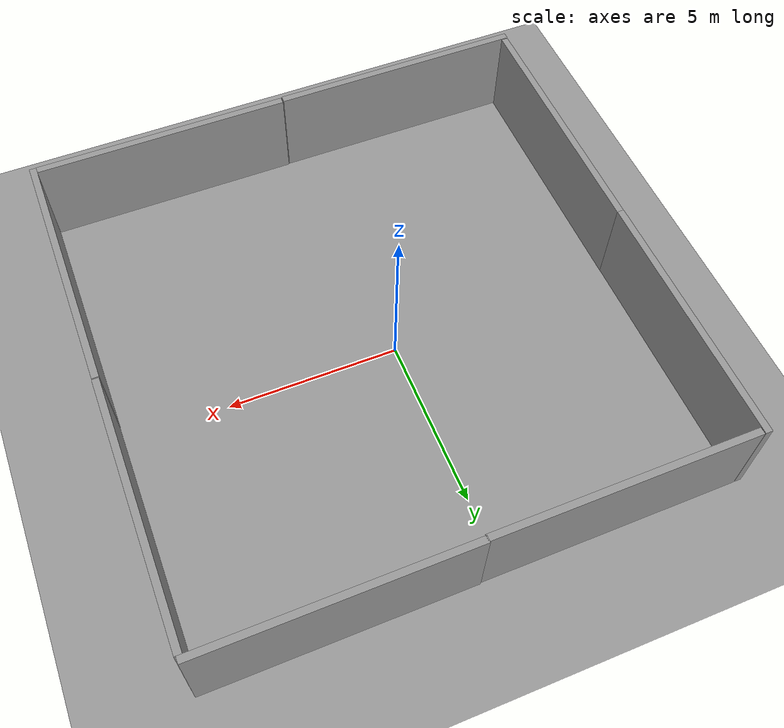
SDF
<sdf version="1.6">
 <world name="default">
  <light name="sun" type="directional">
   <pose>0 0 10 0 -0 0</pose>
   <diffuse>0.8 0.8 0.8 1</diffuse>
   <specular>0.1 0.1 0.1 1</specular>
   <attenuation>
    <range>1000</range>
    <constant>0.9</constant>
    <linear>0.01</linear>
    <quadratic>0.001</quadratic>
   </attenuation>
   <direction>-0.5 0.5 -1</direction>
  </light>
  <gravity>0 0 -9.8</gravity>
  <magnetic_field>6e-06 2.3e-05 -4.2e-05</magnetic_field>
  <atmosphere type="adiabatic"/>
  <physics name="default_physics" default="0" type="ode">
   <max_step_size>0.001</max_step_size>
   <real_time_factor>1</real_time_factor>
   <real_time_update_rate>1000</real_time_update_rate>
  </physics>
  <scene><ambient>0.4 0.4 0.4 1</ambient><background>0.7 0.7 0.7 1</background><shadows>1</shadows></scene>
  <spherical_coordinates>
   <surface_model>EARTH_WGS84</surface_model>
   <latitude_deg>0</latitude_deg>
   <longitude_deg>0</longitude_deg>
   <elevation>0</elevation>
   <heading_deg>0</heading_deg>
  </spherical_coordinates>
  <model name="grey_wall">
   <static>1</static>
   <link name="link">
    <pose>0 0 1.4 0 -0 0</pose>
    <collision name="collision"><geometry><box><size>7.5 0.2 2.8</size></box></geometry></collision>
    <visual name="visual">
     <cast_shadows>0</cast_shadows>
     <geometry><box><size>7.5 0.2 2.8</size></box></geometry>
     <material>
      <script>
       <uri>model://grey_wall/materials/scripts</uri>
       <uri>model://grey_wall/materials/textures</uri>
       <name>vrc/grey_wall</name>
      </script>
     </material>
    </visual>
   </link>
   <pose>4.40592 7.09968 0 0 -0 0</pose>
  </model>
  <model name="grey_wall_0">
   <static>1</static>
   <link name="link">
    <pose>0 0 1.4 0 -0 0</pose>
    <collision name="collision"><geometry><box><size>7.5 0.2 2.8</size></box></geometry></collision>
    <visual name="visual">
     <cast_shadows>0</cast_shadows>
     <geometry><box><size>7.5 0.2 2.8</size></box></geometry>
     <material>
      <script>
       <uri>model://grey_wall/materials/scripts</uri>
       <uri>model://grey_wall/materials/textures</uri>
       <name>vrc/grey_wall</name>
      </script>
     </material>
    </visual>
   </link>
   <pose>-3.06042 7.07139 0 0 -0 0</pose>
  </model>
  <model name="grey_wall_0_clone">
   <static>1</static>
   <link name="link">
    <pose>0 0 1.4 0 -0 0</pose>
    <collision name="collision"><geometry><box><size>7.5 0.2 2.8</size></box></geometry></collision>
    <visual name="visual">
     <cast_shadows>0</cast_shadows>
     <geometry><box><size>7.5 0.2 2.8</size></box></geometry>
     <material>
      <script>
       <uri>model://grey_wall/materials/scripts</uri>
       <uri>model://grey_wall/materials/textures</uri>
       <name>vrc/grey_wall</name>
      </script>
     </material>
    </visual>
   </link>
   <pose>-6.93663 3.41956 0 0 -0 1.57</pose>
  </model>
  <model name="grey_wall_0_clone_clone">
   <static>1</static>
   <link name="link">
    <pose>0 0 1.4 0 -0 0</pose>
    <collision name="collision"><geometry><box><size>7.5 0.2 2.8</size></box></geometry></collision>
    <visual name="visual">
     <cast_shadows>0</cast_shadows>
     <geometry><box><size>7.5 0.2 2.8</size></box></geometry>
     <material>
      <script>
       <uri>model://grey_wall/materials/scripts</uri>
       <uri>model://grey_wall/materials/textures</uri>
       <name>vrc/grey_wall</name>
      </script>
     </material>
    </visual>
   </link>
   <pose>-6.93799 -4.07799 0 0 -0 1.57</pose>
  </model>
  <model name="grey_wall_clone">
   <static>1</static>
   <link name="link">
    <pose>0 0 1.4 0 -0 0</pose>
    <collision name="collision"><geometry><box><size>7.5 0.2 2.8</size></box></geometry></collision>
    <visual name="visual">
     <cast_shadows>0</cast_shadows>
     <geometry><box><size>7.5 0.2 2.8</size></box></geometry>
     <material>
      <script>
       <uri>model://grey_wall/materials/scripts</uri>
       <uri>model://grey_wall/materials/textures</uri>
       <name>vrc/grey_wall</name>
      </script>
     </material>
    </visual>
   </link>
   <pose>-3.3027 -7.9576 0 0 -0 0</pose>
  </model>
  <model name="grey_wall_clone_0">
   <static>1</static>
   <link name="link">
    <pose>0 0 1.4 0 -0 0</pose>
    <collision name="collision"><geometry><box><size>7.5 0.2 2.8</size></box></geometry></collision>
    <visual name="visual">
     <cast_shadows>0</cast_shadows>
     <geometry><box><size>7.5 0.2 2.8</size></box></geometry>
     <material>
      <script>
       <uri>model://grey_wall/materials/scripts</uri>
       <uri>model://grey_wall/materials/textures</uri>
       <name>vrc/grey_wall</name>
      </script>
     </material>
    </visual>
   </link>
   <pose>4.22788 -7.93176 0 0 -0 0</pose>
  </model>
  <model name="grey_wall_0_clone_clone_clone">
   <static>1</static>
   <link name="link">
    <pose>0 0 1.4 0 -0 0</pose>
    <collision name="collision"><geometry><box><size>7.5 0.2 2.8</size></box></geometry></collision>
    <visual name="visual">
     <cast_shadows>0</cast_shadows>
     <geometry><box><size>7.5 0.2 2.8</size></box></geometry>
     <material>
      <script>
       <uri>model://grey_wall/materials/scripts</uri>
       <uri>model://grey_wall/materials/textures</uri>
       <name>vrc/grey_wall</name>
      </script>
     </material>
    </visual>
   </link>
   <pose>8.08065 -4.27591 0 0 -0 1.57</pose>
  </model>
  <model name="grey_wall_0_clone_clone_clone_0">
   <static>1</static>
   <link name="link">
    <pose>0 0 1.4 0 -0 0</pose>
    <collision name="collision"><geometry><box><size>7.5 0.2 2.8</size></box></geometry></collision>
    <visual name="visual">
     <cast_shadows>0</cast_shadows>
     <geometry><box><size>7.5 0.2 2.8</size></box></geometry>
     <material>
      <script>
       <uri>model://grey_wall/materials/scripts</uri>
       <uri>model://grey_wall/materials/textures</uri>
       <name>vrc/grey_wall</name>
      </script>
     </material>
    </visual>
   </link>
   <pose>8.09576 3.25406 0 0 -0 1.57</pose>
  </model>
  <model name="ground_plane_1">
   <static>1</static>
   <link name="link">
    <collision name="collision">
     <geometry><plane><normal>0 0 1</normal><size>100 100</size></plane></geometry>
     <surface><friction><ode><mu>100</mu><mu2>50</mu2></ode></friction></surface>
    </collision>
    <visual name="visual">
     <cast_shadows>0</cast_shadows>
     <geometry><plane><normal>0 0 1</normal><size>100 100</size></plane></geometry>
     <material>
      <script><uri>file://media/materials/scripts/gazebo.material</uri><name>Gazebo/Grey</name></script>
     </material>
    </visual>
   </link>
  </model>
 </world>
</sdf>
